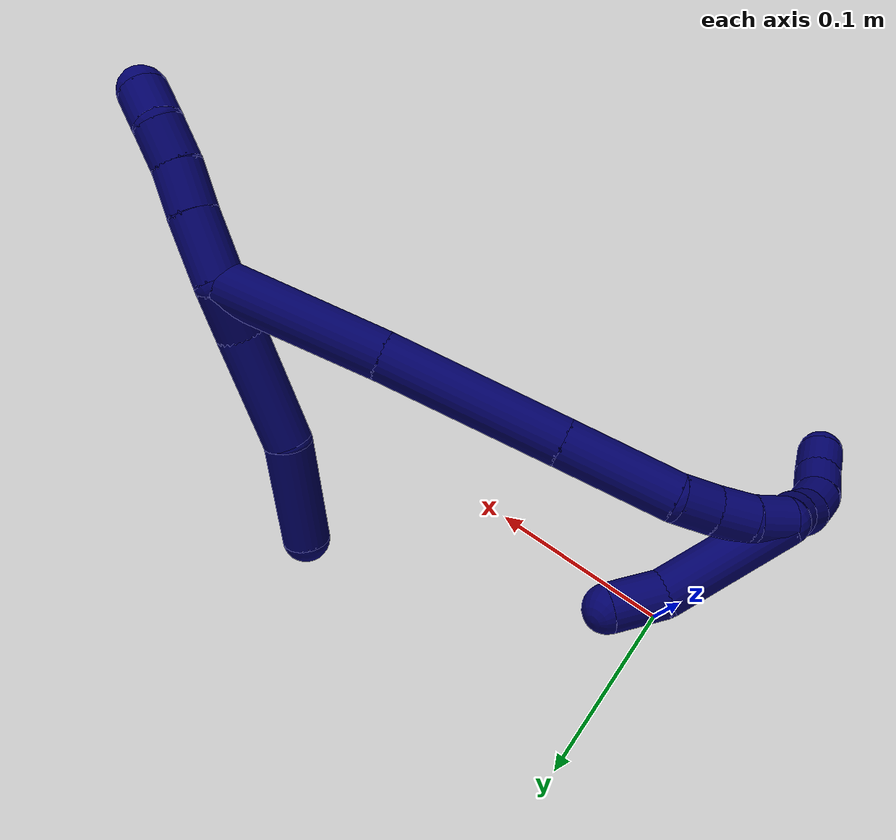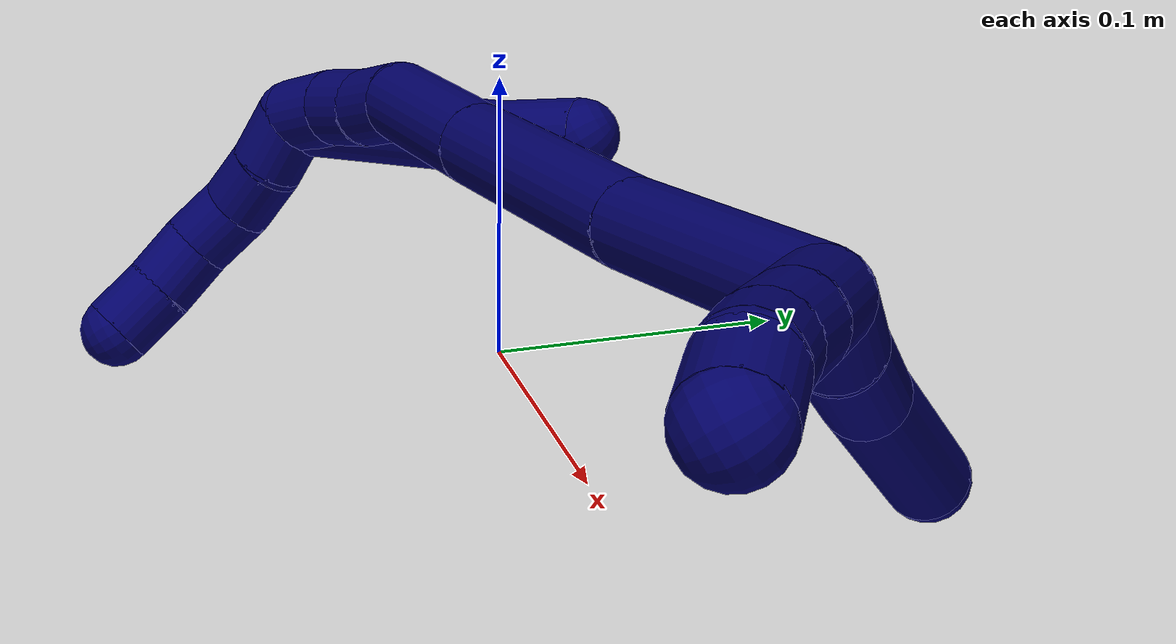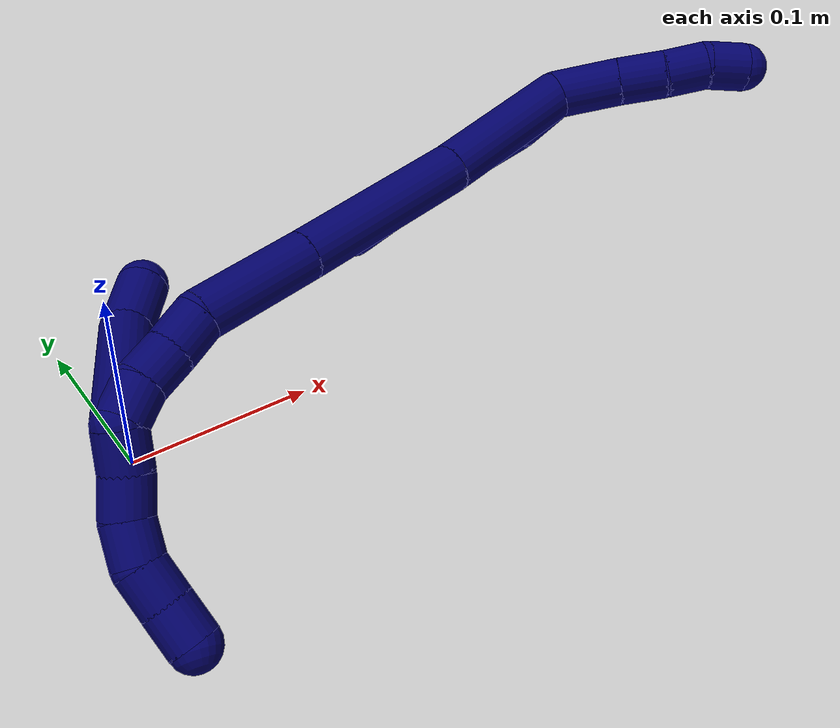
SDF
<sdf version="1.7">
 <world name="default">
  <model name="7">
   <static>0</static>
   <link name="7">
    <collision name="collision-cylinder-e_1_2_8">
     <pose>-0.011122 0.008056 -0.001683 -1.77681 -0.933772 1.1104</pose>
     <geometry><cylinder><radius>0.0125</radius><length>0.027672</length></cylinder></geometry>
     <surface>
      <friction><ode><mu>1.16</mu><mu2>1.16</mu2><slip1>0</slip1><slip2>0</slip2></ode></friction>
      <contact><ode><kp>1e+06</kp><kd>1</kd><max_vel>0</max_vel><min_depth>0.001</min_depth></ode></contact>
     </surface>
    </collision>
    <visual name="visual-cylinder-e_1_2_8">
     <pose>-0.011122 0.008056 -0.001683 -1.77681 -0.933772 1.1104</pose>
     <geometry><cylinder><radius>0.0125</radius><length>0.027672</length></cylinder></geometry>
     <material><ambient>0.003922 0 0.403922 1</ambient></material>
    </visual>
    <collision name="collision-cylinder-e_2_8_9">
     <pose>-0.049393 0.029631 -0.004481 -1.65305 -1.1074 1.18237</pose>
     <geometry><cylinder><radius>0.0125</radius><length>0.060697</length></cylinder></geometry>
     <surface>
      <friction><ode><mu>1.16</mu><mu2>1.16</mu2><slip1>0</slip1><slip2>0</slip2></ode></friction>
      <contact><ode><kp>1e+06</kp><kd>1</kd><max_vel>0</max_vel><min_depth>0.001</min_depth></ode></contact>
     </surface>
    </collision>
    <visual name="visual-cylinder-e_2_8_9">
     <pose>-0.049393 0.029631 -0.004481 -1.65305 -1.1074 1.18237</pose>
     <geometry><cylinder><radius>0.0125</radius><length>0.060697</length></cylinder></geometry>
     <material><ambient>0.003922 0 0.403922 1</ambient></material>
    </visual>
    <collision name="collision-cylinder-e_3_9_6">
     <pose>-0.099481 0.063716 -0.004947 -1.53926 -0.839673 0.816437</pose>
     <geometry><cylinder><radius>0.0125</radius><length>0.061631</length></cylinder></geometry>
     <surface>
      <friction><ode><mu>1.16</mu><mu2>1.16</mu2><slip1>0</slip1><slip2>0</slip2></ode></friction>
      <contact><ode><kp>1e+06</kp><kd>1</kd><max_vel>0</max_vel><min_depth>0.001</min_depth></ode></contact>
     </surface>
    </collision>
    <visual name="visual-cylinder-e_3_9_6">
     <pose>-0.099481 0.063716 -0.004947 -1.53926 -0.839673 0.816437</pose>
     <geometry><cylinder><radius>0.0125</radius><length>0.061631</length></cylinder></geometry>
     <material><ambient>0.003922 0 0.403922 1</ambient></material>
    </visual>
    <collision name="collision-cylinder-e_1_2_10">
     <pose>0.016667 -0.002571 -0.003447 2.50066 1.31829 2.33208</pose>
     <geometry><cylinder><radius>0.0125</radius><length>0.034425</length></cylinder></geometry>
     <surface>
      <friction><ode><mu>1.16</mu><mu2>1.16</mu2><slip1>0</slip1><slip2>0</slip2></ode></friction>
      <contact><ode><kp>1e+06</kp><kd>1</kd><max_vel>0</max_vel><min_depth>0.001</min_depth></ode></contact>
     </surface>
    </collision>
    <visual name="visual-cylinder-e_1_2_10">
     <pose>0.016667 -0.002571 -0.003447 2.50066 1.31829 2.33208</pose>
     <geometry><cylinder><radius>0.0125</radius><length>0.034425</length></cylinder></geometry>
     <material><ambient>0.003922 0 0.403922 1</ambient></material>
    </visual>
    <collision name="collision-cylinder-e_2_10_11">
     <pose>0.04482 -0.006987 -0.009906 2.5922 1.27243 2.41265</pose>
     <geometry><cylinder><radius>0.0125</radius><length>0.024036</length></cylinder></geometry>
     <surface>
      <friction><ode><mu>1.16</mu><mu2>1.16</mu2><slip1>0</slip1><slip2>0</slip2></ode></friction>
      <contact><ode><kp>1e+06</kp><kd>1</kd><max_vel>0</max_vel><min_depth>0.001</min_depth></ode></contact>
     </surface>
    </collision>
    <visual name="visual-cylinder-e_2_10_11">
     <pose>0.04482 -0.006987 -0.009906 2.5922 1.27243 2.41265</pose>
     <geometry><cylinder><radius>0.0125</radius><length>0.024036</length></cylinder></geometry>
     <material><ambient>0.003922 0 0.403922 1</ambient></material>
    </visual>
    <collision name="collision-cylinder-e_3_11_12">
     <pose>0.066765 -0.00988 -0.014637 2.5937 1.38071 2.4857</pose>
     <geometry><cylinder><radius>0.0125</radius><length>0.021301</length></cylinder></geometry>
     <surface>
      <friction><ode><mu>1.16</mu><mu2>1.16</mu2><slip1>0</slip1><slip2>0</slip2></ode></friction>
      <contact><ode><kp>1e+06</kp><kd>1</kd><max_vel>0</max_vel><min_depth>0.001</min_depth></ode></contact>
     </surface>
    </collision>
    <visual name="visual-cylinder-e_3_11_12">
     <pose>0.066765 -0.00988 -0.014637 2.5937 1.38071 2.4857</pose>
     <geometry><cylinder><radius>0.0125</radius><length>0.021301</length></cylinder></geometry>
     <material><ambient>0.003922 0 0.403922 1</ambient></material>
    </visual>
    <collision name="collision-cylinder-e_4_12_5">
     <pose>0.086717 -0.009179 -0.019392 -2.61897 1.21709 -2.40864</pose>
     <geometry><cylinder><radius>0.0125</radius><length>0.020239</length></cylinder></geometry>
     <surface>
      <friction><ode><mu>1.16</mu><mu2>1.16</mu2><slip1>0</slip1><slip2>0</slip2></ode></friction>
      <contact><ode><kp>1e+06</kp><kd>1</kd><max_vel>0</max_vel><min_depth>0.001</min_depth></ode></contact>
     </surface>
    </collision>
    <visual name="visual-cylinder-e_4_12_5">
     <pose>0.086717 -0.009179 -0.019392 -2.61897 1.21709 -2.40864</pose>
     <geometry><cylinder><radius>0.0125</radius><length>0.020239</length></cylinder></geometry>
     <material><ambient>0.003922 0 0.403922 1</ambient></material>
    </visual>
    <collision name="collision-cylinder-e_1_2_13">
     <pose>-0.035831 -0.013073 -0.01699 2.48578 -1.03163 -2.06081</pose>
     <geometry><cylinder><radius>0.0125</radius><length>0.083508</length></cylinder></geometry>
     <surface>
      <friction><ode><mu>1.16</mu><mu2>1.16</mu2><slip1>0</slip1><slip2>0</slip2></ode></friction>
      <contact><ode><kp>1e+06</kp><kd>1</kd><max_vel>0</max_vel><min_depth>0.001</min_depth></ode></contact>
     </surface>
    </collision>
    <visual name="visual-cylinder-e_1_2_13">
     <pose>-0.035831 -0.013073 -0.01699 2.48578 -1.03163 -2.06081</pose>
     <geometry><cylinder><radius>0.0125</radius><length>0.083508</length></cylinder></geometry>
     <material><ambient>0.003922 0 0.403922 1</ambient></material>
    </visual>
    <collision name="collision-cylinder-e_2_13_14">
     <pose>-0.113178 -0.042104 -0.05086 2.38423 -1.06068 -1.94923</pose>
     <geometry><cylinder><radius>0.0125</radius><length>0.095146</length></cylinder></geometry>
     <surface>
      <friction><ode><mu>1.16</mu><mu2>1.16</mu2><slip1>0</slip1><slip2>0</slip2></ode></friction>
      <contact><ode><kp>1e+06</kp><kd>1</kd><max_vel>0</max_vel><min_depth>0.001</min_depth></ode></contact>
     </surface>
    </collision>
    <visual name="visual-cylinder-e_2_13_14">
     <pose>-0.113178 -0.042104 -0.05086 2.38423 -1.06068 -1.94923</pose>
     <geometry><cylinder><radius>0.0125</radius><length>0.095146</length></cylinder></geometry>
     <material><ambient>0.003922 0 0.403922 1</ambient></material>
    </visual>
    <collision name="collision-cylinder-e_3_14_15">
     <pose>-0.180936 -0.068501 -0.078015 2.34833 -1.06169 -1.90221</pose>
     <geometry><cylinder><radius>0.0125</radius><length>0.060107</length></cylinder></geometry>
     <surface>
      <friction><ode><mu>1.16</mu><mu2>1.16</mu2><slip1>0</slip1><slip2>0</slip2></ode></friction>
      <contact><ode><kp>1e+06</kp><kd>1</kd><max_vel>0</max_vel><min_depth>0.001</min_depth></ode></contact>
     </surface>
    </collision>
    <visual name="visual-cylinder-e_3_14_15">
     <pose>-0.180936 -0.068501 -0.078015 2.34833 -1.06169 -1.90221</pose>
     <geometry><cylinder><radius>0.0125</radius><length>0.060107</length></cylinder></geometry>
     <material><ambient>0.003922 0 0.403922 1</ambient></material>
    </visual>
    <collision name="collision-cylinder-e_4_15_16">
     <pose>-0.215233 -0.080544 -0.094588 2.89205 -0.89192 -2.62846</pose>
     <geometry><cylinder><radius>0.0125</radius><length>0.020699</length></cylinder></geometry>
     <surface>
      <friction><ode><mu>1.16</mu><mu2>1.16</mu2><slip1>0</slip1><slip2>0</slip2></ode></friction>
      <contact><ode><kp>1e+06</kp><kd>1</kd><max_vel>0</max_vel><min_depth>0.001</min_depth></ode></contact>
     </surface>
    </collision>
    <visual name="visual-cylinder-e_4_15_16">
     <pose>-0.215233 -0.080544 -0.094588 2.89205 -0.89192 -2.62846</pose>
     <geometry><cylinder><radius>0.0125</radius><length>0.020699</length></cylinder></geometry>
     <material><ambient>0.003922 0 0.403922 1</ambient></material>
    </visual>
    <collision name="collision-cylinder-e_5_16_17">
     <pose>-0.231017 -0.084878 -0.10693 2.71756 -0.861617 -2.26559</pose>
     <geometry><cylinder><radius>0.0125</radius><length>0.02037</length></cylinder></geometry>
     <surface>
      <friction><ode><mu>1.16</mu><mu2>1.16</mu2><slip1>0</slip1><slip2>0</slip2></ode></friction>
      <contact><ode><kp>1e+06</kp><kd>1</kd><max_vel>0</max_vel><min_depth>0.001</min_depth></ode></contact>
     </surface>
    </collision>
    <visual name="visual-cylinder-e_5_16_17">
     <pose>-0.231017 -0.084878 -0.10693 2.71756 -0.861617 -2.26559</pose>
     <geometry><cylinder><radius>0.0125</radius><length>0.02037</length></cylinder></geometry>
     <material><ambient>0.003922 0 0.403922 1</ambient></material>
    </visual>
    <collision name="collision-cylinder-e_6_17_1">
     <pose>-0.24473 -0.089646 -0.120834 2.88775 -0.635146 -2.40098</pose>
     <geometry><cylinder><radius>0.0125</radius><length>0.020171</length></cylinder></geometry>
     <surface>
      <friction><ode><mu>1.16</mu><mu2>1.16</mu2><slip1>0</slip1><slip2>0</slip2></ode></friction>
      <contact><ode><kp>1e+06</kp><kd>1</kd><max_vel>0</max_vel><min_depth>0.001</min_depth></ode></contact>
     </surface>
    </collision>
    <visual name="visual-cylinder-e_6_17_1">
     <pose>-0.24473 -0.089646 -0.120834 2.88775 -0.635146 -2.40098</pose>
     <geometry><cylinder><radius>0.0125</radius><length>0.020171</length></cylinder></geometry>
     <material><ambient>0.003922 0 0.403922 1</ambient></material>
    </visual>
    <collision name="collision-cylinder-e_1_1_18">
     <pose>-0.24747 -0.070963 -0.10017 -0.62829 0.091749 -0.029828</pose>
     <geometry><cylinder><radius>0.0125</radius><length>0.070807</length></cylinder></geometry>
     <surface>
      <friction><ode><mu>1.16</mu><mu2>1.16</mu2><slip1>0</slip1><slip2>0</slip2></ode></friction>
      <contact><ode><kp>1e+06</kp><kd>1</kd><max_vel>0</max_vel><min_depth>0.001</min_depth></ode></contact>
     </surface>
    </collision>
    <visual name="visual-cylinder-e_1_1_18">
     <pose>-0.24747 -0.070963 -0.10017 -0.62829 0.091749 -0.029828</pose>
     <geometry><cylinder><radius>0.0125</radius><length>0.070807</length></cylinder></geometry>
     <material><ambient>0.003922 0 0.403922 1</ambient></material>
    </visual>
    <collision name="collision-cylinder-e_2_18_4">
     <pose>-0.2386 -0.044261 -0.05958 -0.460081 0.395657 -0.093817</pose>
     <geometry><cylinder><radius>0.0125</radius><length>0.029193</length></cylinder></geometry>
     <surface>
      <friction><ode><mu>1.16</mu><mu2>1.16</mu2><slip1>0</slip1><slip2>0</slip2></ode></friction>
      <contact><ode><kp>1e+06</kp><kd>1</kd><max_vel>0</max_vel><min_depth>0.001</min_depth></ode></contact>
     </surface>
    </collision>
    <visual name="visual-cylinder-e_2_18_4">
     <pose>-0.2386 -0.044261 -0.05958 -0.460081 0.395657 -0.093817</pose>
     <geometry><cylinder><radius>0.0125</radius><length>0.029193</length></cylinder></geometry>
     <material><ambient>0.003922 0 0.403922 1</ambient></material>
    </visual>
    <collision name="collision-cylinder-e_1_1_19">
     <pose>-0.252639 -0.087013 -0.137322 -2.64544 -0.193787 0.732814</pose>
     <geometry><cylinder><radius>0.0125</radius><length>0.02</length></cylinder></geometry>
     <surface>
      <friction><ode><mu>1.16</mu><mu2>1.16</mu2><slip1>0</slip1><slip2>0</slip2></ode></friction>
      <contact><ode><kp>1e+06</kp><kd>1</kd><max_vel>0</max_vel><min_depth>0.001</min_depth></ode></contact>
     </surface>
    </collision>
    <visual name="visual-cylinder-e_1_1_19">
     <pose>-0.252639 -0.087013 -0.137322 -2.64544 -0.193787 0.732814</pose>
     <geometry><cylinder><radius>0.0125</radius><length>0.02</length></cylinder></geometry>
     <material><ambient>0.003922 0 0.403922 1</ambient></material>
    </visual>
    <collision name="collision-cylinder-e_2_19_20">
     <pose>-0.257694 -0.078941 -0.15482 -2.77546 -0.318214 1.42824</pose>
     <geometry><cylinder><radius>0.0125</radius><length>0.02</length></cylinder></geometry>
     <surface>
      <friction><ode><mu>1.16</mu><mu2>1.16</mu2><slip1>0</slip1><slip2>0</slip2></ode></friction>
      <contact><ode><kp>1e+06</kp><kd>1</kd><max_vel>0</max_vel><min_depth>0.001</min_depth></ode></contact>
     </surface>
    </collision>
    <visual name="visual-cylinder-e_2_19_20">
     <pose>-0.257694 -0.078941 -0.15482 -2.77546 -0.318214 1.42824</pose>
     <geometry><cylinder><radius>0.0125</radius><length>0.02</length></cylinder></geometry>
     <material><ambient>0.003922 0 0.403922 1</ambient></material>
    </visual>
    <collision name="collision-cylinder-e_3_20_21">
     <pose>-0.261244 -0.073454 -0.173459 -2.93118 -0.042164 0.394169</pose>
     <geometry><cylinder><radius>0.0125</radius><length>0.02</length></cylinder></geometry>
     <surface>
      <friction><ode><mu>1.16</mu><mu2>1.16</mu2><slip1>0</slip1><slip2>0</slip2></ode></friction>
      <contact><ode><kp>1e+06</kp><kd>1</kd><max_vel>0</max_vel><min_depth>0.001</min_depth></ode></contact>
     </surface>
    </collision>
    <visual name="visual-cylinder-e_3_20_21">
     <pose>-0.261244 -0.073454 -0.173459 -2.93118 -0.042164 0.394169</pose>
     <geometry><cylinder><radius>0.0125</radius><length>0.02</length></cylinder></geometry>
     <material><ambient>0.003922 0 0.403922 1</ambient></material>
    </visual>
    <collision name="collision-cylinder-e_4_21_22">
     <pose>-0.258839 -0.068357 -0.192337 -2.82228 0.286575 -1.46118</pose>
     <geometry><cylinder><radius>0.0125</radius><length>0.02</length></cylinder></geometry>
     <surface>
      <friction><ode><mu>1.16</mu><mu2>1.16</mu2><slip1>0</slip1><slip2>0</slip2></ode></friction>
      <contact><ode><kp>1e+06</kp><kd>1</kd><max_vel>0</max_vel><min_depth>0.001</min_depth></ode></contact>
     </surface>
    </collision>
    <visual name="visual-cylinder-e_4_21_22">
     <pose>-0.258839 -0.068357 -0.192337 -2.82228 0.286575 -1.46118</pose>
     <geometry><cylinder><radius>0.0125</radius><length>0.02</length></cylinder></geometry>
     <material><ambient>0.003922 0 0.403922 1</ambient></material>
    </visual>
    <collision name="collision-cylinder-e_5_22_3">
     <pose>-0.252969 -0.063092 -0.2107 -2.90273 0.309189 -1.82917</pose>
     <geometry><cylinder><radius>0.0125</radius><length>0.02</length></cylinder></geometry>
     <surface>
      <friction><ode><mu>1.16</mu><mu2>1.16</mu2><slip1>0</slip1><slip2>0</slip2></ode></friction>
      <contact><ode><kp>1e+06</kp><kd>1</kd><max_vel>0</max_vel><min_depth>0.001</min_depth></ode></contact>
     </surface>
    </collision>
    <visual name="visual-cylinder-e_5_22_3">
     <pose>-0.252969 -0.063092 -0.2107 -2.90273 0.309189 -1.82917</pose>
     <geometry><cylinder><radius>0.0125</radius><length>0.02</length></cylinder></geometry>
     <material><ambient>0.003922 0 0.403922 1</ambient></material>
    </visual>
    <collision name="collision-sphere-3">
     <pose>-0.249926 -0.060838 -0.219955 0 -0 0</pose>
     <geometry><sphere><radius>0.0125</radius></sphere></geometry>
     <surface>
      <friction><ode><mu>1.16</mu><mu2>1.16</mu2><slip1>0</slip1><slip2>0</slip2></ode></friction>
      <contact><ode><kp>1e+06</kp><kd>1</kd><max_vel>0</max_vel><min_depth>0.001</min_depth></ode></contact>
     </surface>
    </collision>
    <visual name="visual-sphere-3">
     <pose>-0.249926 -0.060838 -0.219955 0 -0 0</pose>
     <geometry><sphere><radius>0.0125</radius></sphere></geometry>
     <material><ambient>0.003922 0 0.403922 1</ambient></material>
    </visual>
    <collision name="collision-sphere-22">
     <pose>-0.256012 -0.065345 -0.201444 0 -0 0</pose>
     <geometry><sphere><radius>0.0125</radius></sphere></geometry>
     <surface>
      <friction><ode><mu>1.16</mu><mu2>1.16</mu2><slip1>0</slip1><slip2>0</slip2></ode></friction>
      <contact><ode><kp>1e+06</kp><kd>1</kd><max_vel>0</max_vel><min_depth>0.001</min_depth></ode></contact>
     </surface>
    </collision>
    <visual name="visual-sphere-22">
     <pose>-0.256012 -0.065345 -0.201444 0 -0 0</pose>
     <geometry><sphere><radius>0.0125</radius></sphere></geometry>
     <material><ambient>0.003922 0 0.403922 1</ambient></material>
    </visual>
    <collision name="collision-sphere-21">
     <pose>-0.261665 -0.071368 -0.18323 0 -0 0</pose>
     <geometry><sphere><radius>0.0125</radius></sphere></geometry>
     <surface>
      <friction><ode><mu>1.16</mu><mu2>1.16</mu2><slip1>0</slip1><slip2>0</slip2></ode></friction>
      <contact><ode><kp>1e+06</kp><kd>1</kd><max_vel>0</max_vel><min_depth>0.001</min_depth></ode></contact>
     </surface>
    </collision>
    <visual name="visual-sphere-21">
     <pose>-0.261665 -0.071368 -0.18323 0 -0 0</pose>
     <geometry><sphere><radius>0.0125</radius></sphere></geometry>
     <material><ambient>0.003922 0 0.403922 1</ambient></material>
    </visual>
    <collision name="collision-sphere-20">
     <pose>-0.260822 -0.075541 -0.163688 0 -0 0</pose>
     <geometry><sphere><radius>0.0125</radius></sphere></geometry>
     <surface>
      <friction><ode><mu>1.16</mu><mu2>1.16</mu2><slip1>0</slip1><slip2>0</slip2></ode></friction>
      <contact><ode><kp>1e+06</kp><kd>1</kd><max_vel>0</max_vel><min_depth>0.001</min_depth></ode></contact>
     </surface>
    </collision>
    <visual name="visual-sphere-20">
     <pose>-0.260822 -0.075541 -0.163688 0 -0 0</pose>
     <geometry><sphere><radius>0.0125</radius></sphere></geometry>
     <material><ambient>0.003922 0 0.403922 1</ambient></material>
    </visual>
    <collision name="collision-sphere-19">
     <pose>-0.254565 -0.082342 -0.145951 0 -0 0</pose>
     <geometry><sphere><radius>0.0125</radius></sphere></geometry>
     <surface>
      <friction><ode><mu>1.16</mu><mu2>1.16</mu2><slip1>0</slip1><slip2>0</slip2></ode></friction>
      <contact><ode><kp>1e+06</kp><kd>1</kd><max_vel>0</max_vel><min_depth>0.001</min_depth></ode></contact>
     </surface>
    </collision>
    <visual name="visual-sphere-19">
     <pose>-0.254565 -0.082342 -0.145951 0 -0 0</pose>
     <geometry><sphere><radius>0.0125</radius></sphere></geometry>
     <material><ambient>0.003922 0 0.403922 1</ambient></material>
    </visual>
    <collision name="collision-sphere-11">
     <pose>0.056307 -0.008832 -0.012919 0 -0 0</pose>
     <geometry><sphere><radius>0.0125</radius></sphere></geometry>
     <surface>
      <friction><ode><mu>1.16</mu><mu2>1.16</mu2><slip1>0</slip1><slip2>0</slip2></ode></friction>
      <contact><ode><kp>1e+06</kp><kd>1</kd><max_vel>0</max_vel><min_depth>0.001</min_depth></ode></contact>
     </surface>
    </collision>
    <visual name="visual-sphere-11">
     <pose>0.056307 -0.008832 -0.012919 0 -0 0</pose>
     <geometry><sphere><radius>0.0125</radius></sphere></geometry>
     <material><ambient>0.003922 0 0.403922 1</ambient></material>
    </visual>
    <collision name="collision-sphere-10">
     <pose>0.033333 -0.005143 -0.006894 0 -0 0</pose>
     <geometry><sphere><radius>0.0125</radius></sphere></geometry>
     <surface>
      <friction><ode><mu>1.16</mu><mu2>1.16</mu2><slip1>0</slip1><slip2>0</slip2></ode></friction>
      <contact><ode><kp>1e+06</kp><kd>1</kd><max_vel>0</max_vel><min_depth>0.001</min_depth></ode></contact>
     </surface>
    </collision>
    <visual name="visual-sphere-10">
     <pose>0.033333 -0.005143 -0.006894 0 -0 0</pose>
     <geometry><sphere><radius>0.0125</radius></sphere></geometry>
     <material><ambient>0.003922 0 0.403922 1</ambient></material>
    </visual>
    <collision name="collision-sphere-6">
     <pose>-0.12242 0.084281 -0.004298 0 -0 0</pose>
     <geometry><sphere><radius>0.0125</radius></sphere></geometry>
     <surface>
      <friction><ode><mu>1.16</mu><mu2>1.16</mu2><slip1>0</slip1><slip2>0</slip2></ode></friction>
      <contact><ode><kp>1e+06</kp><kd>1</kd><max_vel>0</max_vel><min_depth>0.001</min_depth></ode></contact>
     </surface>
    </collision>
    <visual name="visual-sphere-6">
     <pose>-0.12242 0.084281 -0.004298 0 -0 0</pose>
     <geometry><sphere><radius>0.0125</radius></sphere></geometry>
     <material><ambient>0.003922 0 0.403922 1</ambient></material>
    </visual>
    <collision name="collision-sphere-9">
     <pose>-0.076541 0.043151 -0.005596 0 -0 0</pose>
     <geometry><sphere><radius>0.0125</radius></sphere></geometry>
     <surface>
      <friction><ode><mu>1.16</mu><mu2>1.16</mu2><slip1>0</slip1><slip2>0</slip2></ode></friction>
      <contact><ode><kp>1e+06</kp><kd>1</kd><max_vel>0</max_vel><min_depth>0.001</min_depth></ode></contact>
     </surface>
    </collision>
    <visual name="visual-sphere-9">
     <pose>-0.076541 0.043151 -0.005596 0 -0 0</pose>
     <geometry><sphere><radius>0.0125</radius></sphere></geometry>
     <material><ambient>0.003922 0 0.403922 1</ambient></material>
    </visual>
    <collision name="collision-sphere-2">
     <geometry><sphere><radius>0.0125</radius></sphere></geometry>
     <surface>
      <friction><ode><mu>1.16</mu><mu2>1.16</mu2><slip1>0</slip1><slip2>0</slip2></ode></friction>
      <contact><ode><kp>1e+06</kp><kd>1</kd><max_vel>0</max_vel><min_depth>0.001</min_depth></ode></contact>
     </surface>
    </collision>
    <visual name="visual-sphere-2">
     <geometry><sphere><radius>0.0125</radius></sphere></geometry>
     <material><ambient>0.003922 0 0.403922 1</ambient></material>
    </visual>
    <collision name="collision-sphere-8">
     <pose>-0.022245 0.016112 -0.003367 0 -0 0</pose>
     <geometry><sphere><radius>0.0125</radius></sphere></geometry>
     <surface>
      <friction><ode><mu>1.16</mu><mu2>1.16</mu2><slip1>0</slip1><slip2>0</slip2></ode></friction>
      <contact><ode><kp>1e+06</kp><kd>1</kd><max_vel>0</max_vel><min_depth>0.001</min_depth></ode></contact>
     </surface>
    </collision>
    <visual name="visual-sphere-8">
     <pose>-0.022245 0.016112 -0.003367 0 -0 0</pose>
     <geometry><sphere><radius>0.0125</radius></sphere></geometry>
     <material><ambient>0.003922 0 0.403922 1</ambient></material>
    </visual>
    <collision name="collision-sphere-12">
     <pose>0.077224 -0.010928 -0.016355 0 -0 0</pose>
     <geometry><sphere><radius>0.0125</radius></sphere></geometry>
     <surface>
      <friction><ode><mu>1.16</mu><mu2>1.16</mu2><slip1>0</slip1><slip2>0</slip2></ode></friction>
      <contact><ode><kp>1e+06</kp><kd>1</kd><max_vel>0</max_vel><min_depth>0.001</min_depth></ode></contact>
     </surface>
    </collision>
    <visual name="visual-sphere-12">
     <pose>0.077224 -0.010928 -0.016355 0 -0 0</pose>
     <geometry><sphere><radius>0.0125</radius></sphere></geometry>
     <material><ambient>0.003922 0 0.403922 1</ambient></material>
    </visual>
    <collision name="collision-sphere-5">
     <pose>0.09621 -0.007429 -0.022429 0 -0 0</pose>
     <geometry><sphere><radius>0.0125</radius></sphere></geometry>
     <surface>
      <friction><ode><mu>1.16</mu><mu2>1.16</mu2><slip1>0</slip1><slip2>0</slip2></ode></friction>
      <contact><ode><kp>1e+06</kp><kd>1</kd><max_vel>0</max_vel><min_depth>0.001</min_depth></ode></contact>
     </surface>
    </collision>
    <visual name="visual-sphere-5">
     <pose>0.09621 -0.007429 -0.022429 0 -0 0</pose>
     <geometry><sphere><radius>0.0125</radius></sphere></geometry>
     <material><ambient>0.003922 0 0.403922 1</ambient></material>
    </visual>
    <collision name="collision-sphere-13">
     <pose>-0.071661 -0.026145 -0.033981 0 -0 0</pose>
     <geometry><sphere><radius>0.0125</radius></sphere></geometry>
     <surface>
      <friction><ode><mu>1.16</mu><mu2>1.16</mu2><slip1>0</slip1><slip2>0</slip2></ode></friction>
      <contact><ode><kp>1e+06</kp><kd>1</kd><max_vel>0</max_vel><min_depth>0.001</min_depth></ode></contact>
     </surface>
    </collision>
    <visual name="visual-sphere-13">
     <pose>-0.071661 -0.026145 -0.033981 0 -0 0</pose>
     <geometry><sphere><radius>0.0125</radius></sphere></geometry>
     <material><ambient>0.003922 0 0.403922 1</ambient></material>
    </visual>
    <collision name="collision-sphere-14">
     <pose>-0.154694 -0.058062 -0.067739 0 -0 0</pose>
     <geometry><sphere><radius>0.0125</radius></sphere></geometry>
     <surface>
      <friction><ode><mu>1.16</mu><mu2>1.16</mu2><slip1>0</slip1><slip2>0</slip2></ode></friction>
      <contact><ode><kp>1e+06</kp><kd>1</kd><max_vel>0</max_vel><min_depth>0.001</min_depth></ode></contact>
     </surface>
    </collision>
    <visual name="visual-sphere-14">
     <pose>-0.154694 -0.058062 -0.067739 0 -0 0</pose>
     <geometry><sphere><radius>0.0125</radius></sphere></geometry>
     <material><ambient>0.003922 0 0.403922 1</ambient></material>
    </visual>
    <collision name="collision-sphere-15">
     <pose>-0.207178 -0.07894 -0.088291 0 -0 0</pose>
     <geometry><sphere><radius>0.0125</radius></sphere></geometry>
     <surface>
      <friction><ode><mu>1.16</mu><mu2>1.16</mu2><slip1>0</slip1><slip2>0</slip2></ode></friction>
      <contact><ode><kp>1e+06</kp><kd>1</kd><max_vel>0</max_vel><min_depth>0.001</min_depth></ode></contact>
     </surface>
    </collision>
    <visual name="visual-sphere-15">
     <pose>-0.207178 -0.07894 -0.088291 0 -0 0</pose>
     <geometry><sphere><radius>0.0125</radius></sphere></geometry>
     <material><ambient>0.003922 0 0.403922 1</ambient></material>
    </visual>
    <collision name="collision-sphere-16">
     <pose>-0.223288 -0.082149 -0.100885 0 -0 0</pose>
     <geometry><sphere><radius>0.0125</radius></sphere></geometry>
     <surface>
      <friction><ode><mu>1.16</mu><mu2>1.16</mu2><slip1>0</slip1><slip2>0</slip2></ode></friction>
      <contact><ode><kp>1e+06</kp><kd>1</kd><max_vel>0</max_vel><min_depth>0.001</min_depth></ode></contact>
     </surface>
    </collision>
    <visual name="visual-sphere-16">
     <pose>-0.223288 -0.082149 -0.100885 0 -0 0</pose>
     <geometry><sphere><radius>0.0125</radius></sphere></geometry>
     <material><ambient>0.003922 0 0.403922 1</ambient></material>
    </visual>
    <collision name="collision-sphere-17">
     <pose>-0.238746 -0.087607 -0.112975 0 -0 0</pose>
     <geometry><sphere><radius>0.0125</radius></sphere></geometry>
     <surface>
      <friction><ode><mu>1.16</mu><mu2>1.16</mu2><slip1>0</slip1><slip2>0</slip2></ode></friction>
      <contact><ode><kp>1e+06</kp><kd>1</kd><max_vel>0</max_vel><min_depth>0.001</min_depth></ode></contact>
     </surface>
    </collision>
    <visual name="visual-sphere-17">
     <pose>-0.238746 -0.087607 -0.112975 0 -0 0</pose>
     <geometry><sphere><radius>0.0125</radius></sphere></geometry>
     <material><ambient>0.003922 0 0.403922 1</ambient></material>
    </visual>
    <collision name="collision-sphere-1">
     <pose>-0.250713 -0.091685 -0.128692 0 -0 0</pose>
     <geometry><sphere><radius>0.0125</radius></sphere></geometry>
     <surface>
      <friction><ode><mu>1.16</mu><mu2>1.16</mu2><slip1>0</slip1><slip2>0</slip2></ode></friction>
      <contact><ode><kp>1e+06</kp><kd>1</kd><max_vel>0</max_vel><min_depth>0.001</min_depth></ode></contact>
     </surface>
    </collision>
    <visual name="visual-sphere-1">
     <pose>-0.250713 -0.091685 -0.128692 0 -0 0</pose>
     <geometry><sphere><radius>0.0125</radius></sphere></geometry>
     <material><ambient>0.003922 0 0.403922 1</ambient></material>
    </visual>
    <collision name="collision-sphere-18">
     <pose>-0.244226 -0.050242 -0.071648 0 -0 0</pose>
     <geometry><sphere><radius>0.0125</radius></sphere></geometry>
     <surface>
      <friction><ode><mu>1.16</mu><mu2>1.16</mu2><slip1>0</slip1><slip2>0</slip2></ode></friction>
      <contact><ode><kp>1e+06</kp><kd>1</kd><max_vel>0</max_vel><min_depth>0.001</min_depth></ode></contact>
     </surface>
    </collision>
    <visual name="visual-sphere-18">
     <pose>-0.244226 -0.050242 -0.071648 0 -0 0</pose>
     <geometry><sphere><radius>0.0125</radius></sphere></geometry>
     <material><ambient>0.003922 0 0.403922 1</ambient></material>
    </visual>
    <collision name="collision-sphere-4">
     <pose>-0.232975 -0.038281 -0.047511 0 -0 0</pose>
     <geometry><sphere><radius>0.0125</radius></sphere></geometry>
     <surface>
      <friction><ode><mu>1.16</mu><mu2>1.16</mu2><slip1>0</slip1><slip2>0</slip2></ode></friction>
      <contact><ode><kp>1e+06</kp><kd>1</kd><max_vel>0</max_vel><min_depth>0.001</min_depth></ode></contact>
     </surface>
    </collision>
    <visual name="visual-sphere-4">
     <pose>-0.232975 -0.038281 -0.047511 0 -0 0</pose>
     <geometry><sphere><radius>0.0125</radius></sphere></geometry>
     <material><ambient>0.003922 0 0.403922 1</ambient></material>
    </visual>
    <inertial>
     <pose>-0.124663 -0.030477 -0.060546 0 -0 0</pose>
     <mass>0.75</mass>
     <inertia><ixx>-5e-05</ixx><ixy>0</ixy><ixz>0</ixz><iyy>0.000151</iyy><iyz>0</iyz><izz>0.000144</izz></inertia>
    </inertial>
   </link>
   <pose>0.262529 -0.000353 0.130892 -1.00918 -0.220341 -0.345486</pose>
  </model>
 </world>
</sdf>
